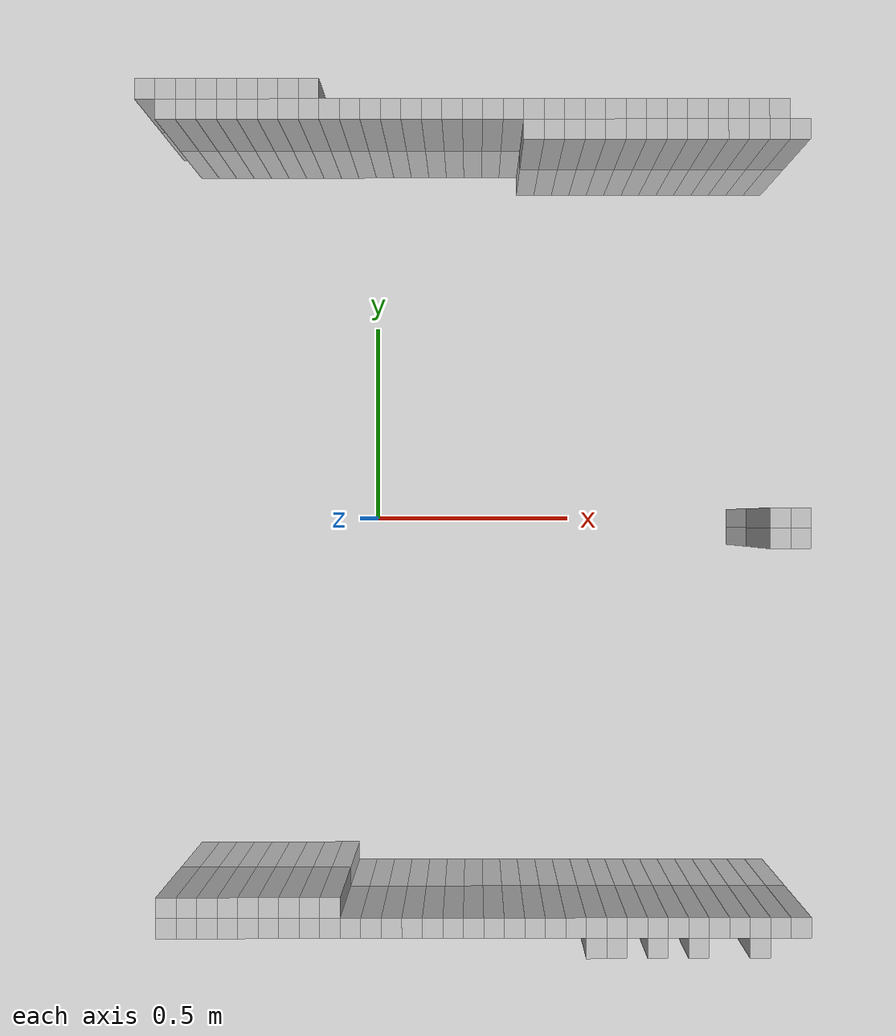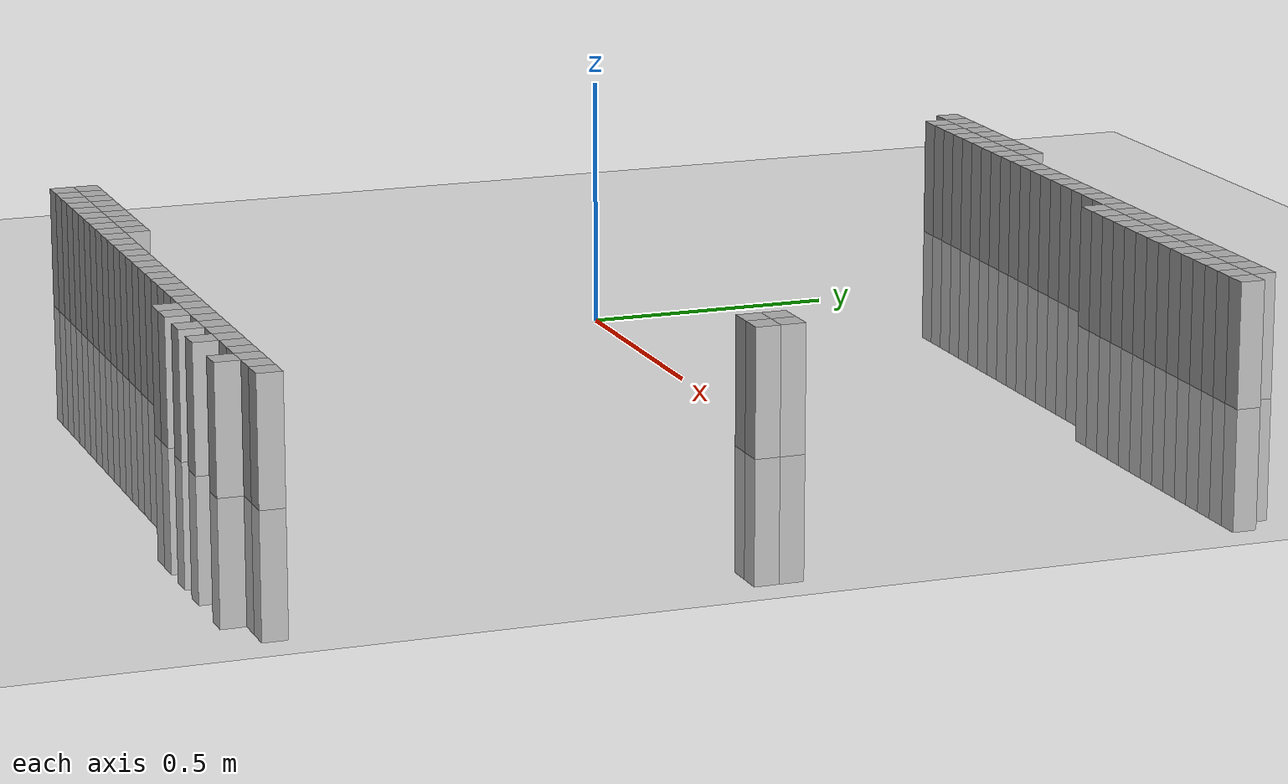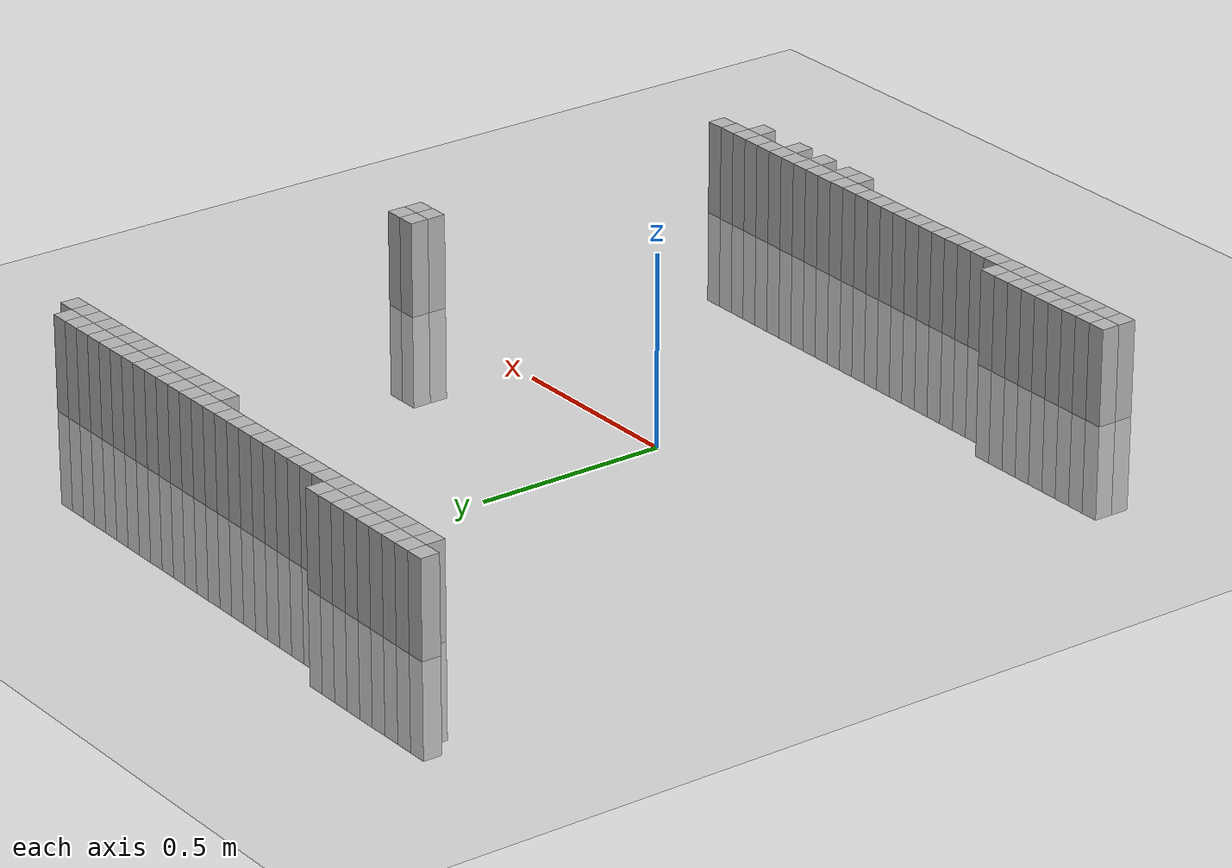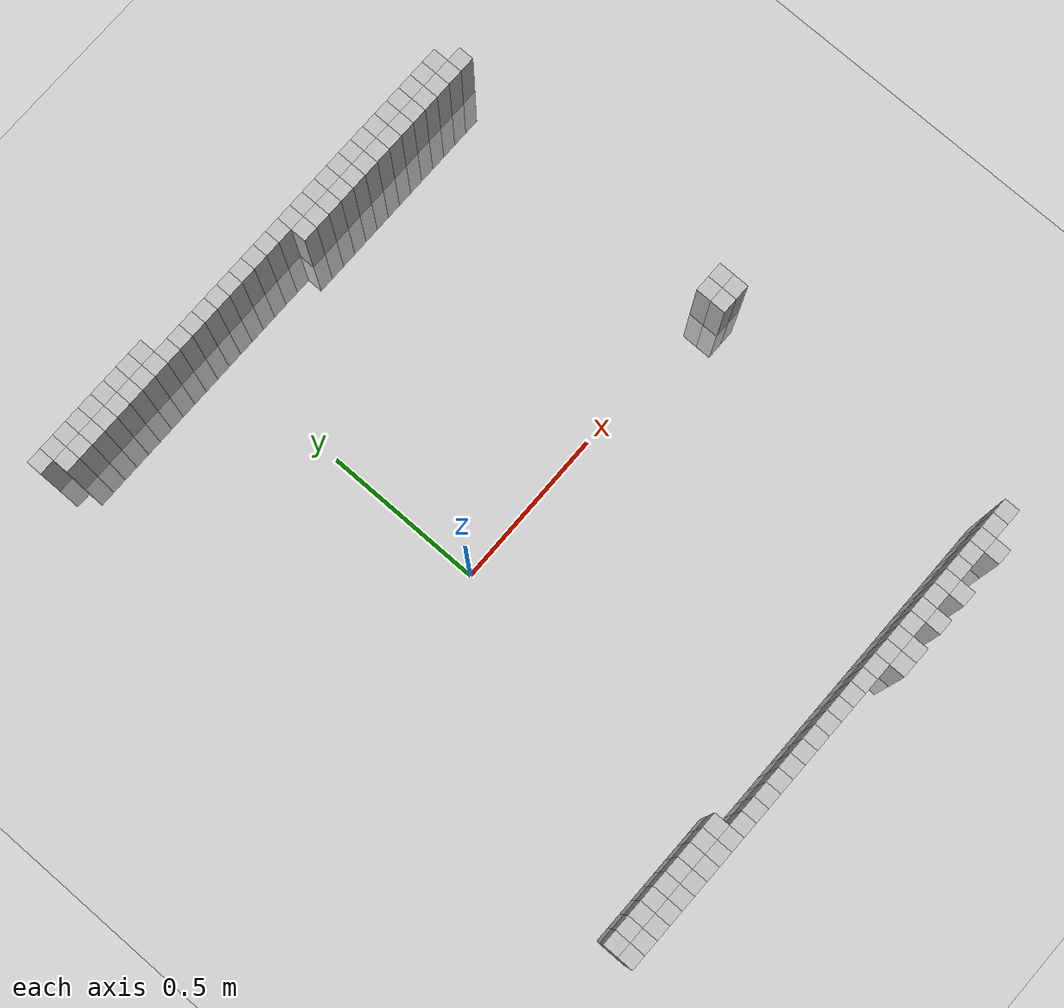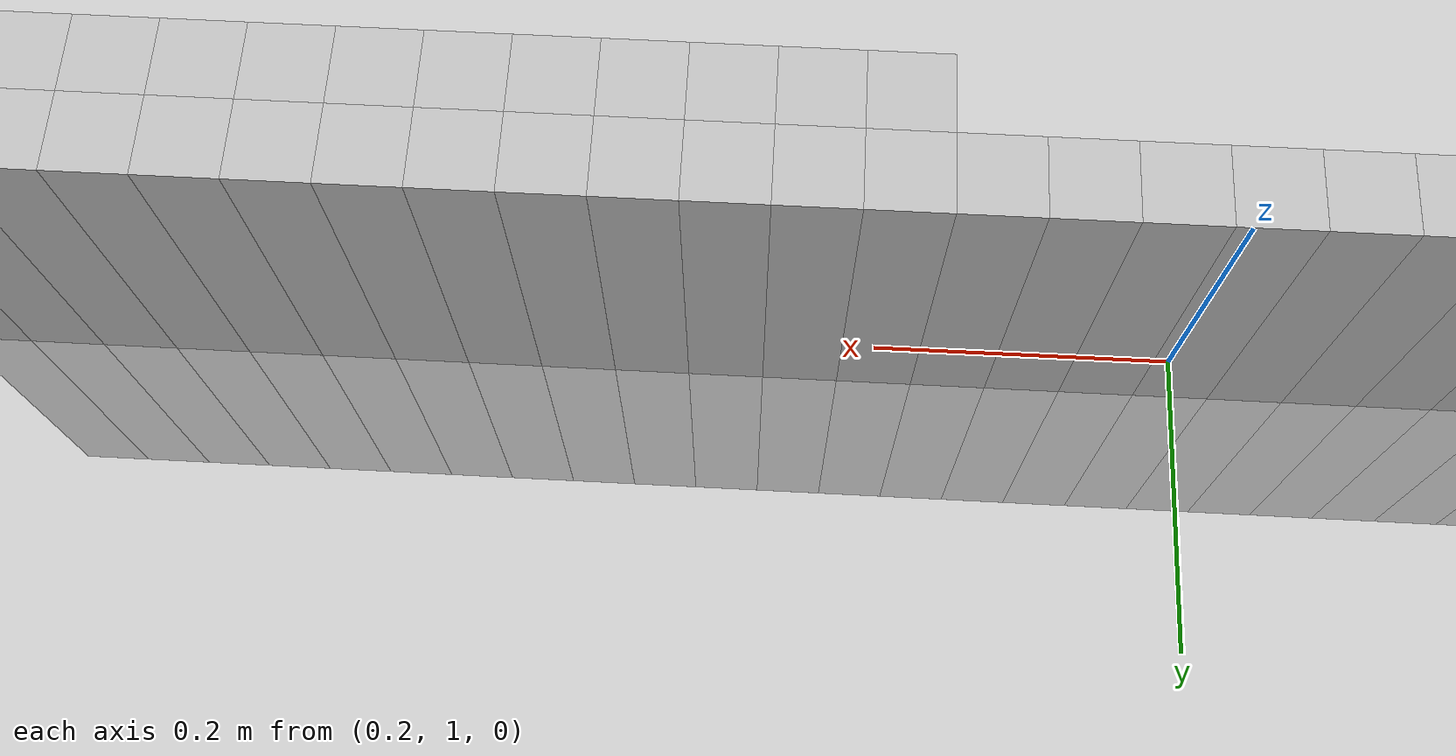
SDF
<sdf version="1.6">
 <world name="my_exploration_world">
  <include><uri>model://ground_plane</uri></include>
  <include><uri>model://sun</uri></include>
  <model name="obstacle_0">
   <pose>0.5500001572072506 -1.0499998666346073 0 0 0 0</pose>
   <link name="link">
    <collision name="collision">
     <geometry><box><size>0.05000000074505806 0.05000000074505806 0.5</size></box></geometry>
    </collision>
    <visual name="visual">
     <geometry><box><size>0.05000000074505806 0.05000000074505806 0.5</size></box></geometry>
    </visual>
   </link>
   <static>true</static>
  </model>
  <model name="obstacle_1">
   <pose>0.6000001579523087 -1.0499998666346073 0 0 0 0</pose>
   <link name="link">
    <collision name="collision">
     <geometry><box><size>0.05000000074505806 0.05000000074505806 0.5</size></box></geometry>
    </collision>
    <visual name="visual">
     <geometry><box><size>0.05000000074505806 0.05000000074505806 0.5</size></box></geometry>
    </visual>
   </link>
   <static>true</static>
  </model>
  <model name="obstacle_2">
   <pose>0.7000001594424248 -1.0499998666346073 0 0 0 0</pose>
   <link name="link">
    <collision name="collision">
     <geometry><box><size>0.05000000074505806 0.05000000074505806 0.5</size></box></geometry>
    </collision>
    <visual name="visual">
     <geometry><box><size>0.05000000074505806 0.05000000074505806 0.5</size></box></geometry>
    </visual>
   </link>
   <static>true</static>
  </model>
  <model name="obstacle_3">
   <pose>0.8000001609325409 -1.0499998666346073 0 0 0 0</pose>
   <link name="link">
    <collision name="collision">
     <geometry><box><size>0.05000000074505806 0.05000000074505806 0.5</size></box></geometry>
    </collision>
    <visual name="visual">
     <geometry><box><size>0.05000000074505806 0.05000000074505806 0.5</size></box></geometry>
    </visual>
   </link>
   <static>true</static>
  </model>
  <model name="obstacle_4">
   <pose>0.9500001631677151 -1.0499998666346073 0 0 0 0</pose>
   <link name="link">
    <collision name="collision">
     <geometry><box><size>0.05000000074505806 0.05000000074505806 0.5</size></box></geometry>
    </collision>
    <visual name="visual">
     <geometry><box><size>0.05000000074505806 0.05000000074505806 0.5</size></box></geometry>
    </visual>
   </link>
   <static>true</static>
  </model>
  <model name="obstacle_15">
   <pose>-0.49999985843896866 -0.9999998658895493 0 0 0 0</pose>
   <link name="link">
    <collision name="collision">
     <geometry><box><size>0.05000000074505806 0.05000000074505806 0.5</size></box></geometry>
    </collision>
    <visual name="visual">
     <geometry><box><size>0.05000000074505806 0.05000000074505806 0.5</size></box></geometry>
    </visual>
   </link>
   <static>true</static>
  </model>
  <model name="obstacle_16">
   <pose>-0.4499998576939106 -0.9999998658895493 0 0 0 0</pose>
   <link name="link">
    <collision name="collision">
     <geometry><box><size>0.05000000074505806 0.05000000074505806 0.5</size></box></geometry>
    </collision>
    <visual name="visual">
     <geometry><box><size>0.05000000074505806 0.05000000074505806 0.5</size></box></geometry>
    </visual>
   </link>
   <static>true</static>
  </model>
  <model name="obstacle_17">
   <pose>-0.39999985694885254 -0.9999998658895493 0 0 0 0</pose>
   <link name="link">
    <collision name="collision">
     <geometry><box><size>0.05000000074505806 0.05000000074505806 0.5</size></box></geometry>
    </collision>
    <visual name="visual">
     <geometry><box><size>0.05000000074505806 0.05000000074505806 0.5</size></box></geometry>
    </visual>
   </link>
   <static>true</static>
  </model>
  <model name="obstacle_18">
   <pose>-0.3499998562037945 -0.9999998658895493 0 0 0 0</pose>
   <link name="link">
    <collision name="collision">
     <geometry><box><size>0.05000000074505806 0.05000000074505806 0.5</size></box></geometry>
    </collision>
    <visual name="visual">
     <geometry><box><size>0.05000000074505806 0.05000000074505806 0.5</size></box></geometry>
    </visual>
   </link>
   <static>true</static>
  </model>
  <model name="obstacle_19">
   <pose>-0.2999998554587364 -0.9999998658895493 0 0 0 0</pose>
   <link name="link">
    <collision name="collision">
     <geometry><box><size>0.05000000074505806 0.05000000074505806 0.5</size></box></geometry>
    </collision>
    <visual name="visual">
     <geometry><box><size>0.05000000074505806 0.05000000074505806 0.5</size></box></geometry>
    </visual>
   </link>
   <static>true</static>
  </model>
  <model name="obstacle_20">
   <pose>-0.24999985471367836 -0.9999998658895493 0 0 0 0</pose>
   <link name="link">
    <collision name="collision">
     <geometry><box><size>0.05000000074505806 0.05000000074505806 0.5</size></box></geometry>
    </collision>
    <visual name="visual">
     <geometry><box><size>0.05000000074505806 0.05000000074505806 0.5</size></box></geometry>
    </visual>
   </link>
   <static>true</static>
  </model>
  <model name="obstacle_21">
   <pose>-0.1999998539686203 -0.9999998658895493 0 0 0 0</pose>
   <link name="link">
    <collision name="collision">
     <geometry><box><size>0.05000000074505806 0.05000000074505806 0.5</size></box></geometry>
    </collision>
    <visual name="visual">
     <geometry><box><size>0.05000000074505806 0.05000000074505806 0.5</size></box></geometry>
    </visual>
   </link>
   <static>true</static>
  </model>
  <model name="obstacle_22">
   <pose>-0.14999985322356224 -0.9999998658895493 0 0 0 0</pose>
   <link name="link">
    <collision name="collision">
     <geometry><box><size>0.05000000074505806 0.05000000074505806 0.5</size></box></geometry>
    </collision>
    <visual name="visual">
     <geometry><box><size>0.05000000074505806 0.05000000074505806 0.5</size></box></geometry>
    </visual>
   </link>
   <static>true</static>
  </model>
  <model name="obstacle_23">
   <pose>-0.09999985247850418 -0.9999998658895493 0 0 0 0</pose>
   <link name="link">
    <collision name="collision">
     <geometry><box><size>0.05000000074505806 0.05000000074505806 0.5</size></box></geometry>
    </collision>
    <visual name="visual">
     <geometry><box><size>0.05000000074505806 0.05000000074505806 0.5</size></box></geometry>
    </visual>
   </link>
   <static>true</static>
  </model>
  <model name="obstacle_24">
   <pose>-0.04999985173344612 -0.9999998658895493 0 0 0 0</pose>
   <link name="link">
    <collision name="collision">
     <geometry><box><size>0.05000000074505806 0.05000000074505806 0.5</size></box></geometry>
    </collision>
    <visual name="visual">
     <geometry><box><size>0.05000000074505806 0.05000000074505806 0.5</size></box></geometry>
    </visual>
   </link>
   <static>true</static>
  </model>
  <model name="obstacle_25">
   <pose>1.4901161193847656e-07 -0.9999998658895493 0 0 0 0</pose>
   <link name="link">
    <collision name="collision">
     <geometry><box><size>0.05000000074505806 0.05000000074505806 0.5</size></box></geometry>
    </collision>
    <visual name="visual">
     <geometry><box><size>0.05000000074505806 0.05000000074505806 0.5</size></box></geometry>
    </visual>
   </link>
   <static>true</static>
  </model>
  <model name="obstacle_26">
   <pose>0.05000014975667 -0.9999998658895493 0 0 0 0</pose>
   <link name="link">
    <collision name="collision">
     <geometry><box><size>0.05000000074505806 0.05000000074505806 0.5</size></box></geometry>
    </collision>
    <visual name="visual">
     <geometry><box><size>0.05000000074505806 0.05000000074505806 0.5</size></box></geometry>
    </visual>
   </link>
   <static>true</static>
  </model>
  <model name="obstacle_27">
   <pose>0.10000015050172806 -0.9999998658895493 0 0 0 0</pose>
   <link name="link">
    <collision name="collision">
     <geometry><box><size>0.05000000074505806 0.05000000074505806 0.5</size></box></geometry>
    </collision>
    <visual name="visual">
     <geometry><box><size>0.05000000074505806 0.05000000074505806 0.5</size></box></geometry>
    </visual>
   </link>
   <static>true</static>
  </model>
  <model name="obstacle_28">
   <pose>0.15000015124678612 -0.9999998658895493 0 0 0 0</pose>
   <link name="link">
    <collision name="collision">
     <geometry><box><size>0.05000000074505806 0.05000000074505806 0.5</size></box></geometry>
    </collision>
    <visual name="visual">
     <geometry><box><size>0.05000000074505806 0.05000000074505806 0.5</size></box></geometry>
    </visual>
   </link>
   <static>true</static>
  </model>
  <model name="obstacle_29">
   <pose>0.20000015199184418 -0.9999998658895493 0 0 0 0</pose>
   <link name="link">
    <collision name="collision">
     <geometry><box><size>0.05000000074505806 0.05000000074505806 0.5</size></box></geometry>
    </collision>
    <visual name="visual">
     <geometry><box><size>0.05000000074505806 0.05000000074505806 0.5</size></box></geometry>
    </visual>
   </link>
   <static>true</static>
  </model>
  <model name="obstacle_30">
   <pose>0.25000015273690224 -0.9999998658895493 0 0 0 0</pose>
   <link name="link">
    <collision name="collision">
     <geometry><box><size>0.05000000074505806 0.05000000074505806 0.5</size></box></geometry>
    </collision>
    <visual name="visual">
     <geometry><box><size>0.05000000074505806 0.05000000074505806 0.5</size></box></geometry>
    </visual>
   </link>
   <static>true</static>
  </model>
  <model name="obstacle_31">
   <pose>0.3000001534819603 -0.9999998658895493 0 0 0 0</pose>
   <link name="link">
    <collision name="collision">
     <geometry><box><size>0.05000000074505806 0.05000000074505806 0.5</size></box></geometry>
    </collision>
    <visual name="visual">
     <geometry><box><size>0.05000000074505806 0.05000000074505806 0.5</size></box></geometry>
    </visual>
   </link>
   <static>true</static>
  </model>
  <model name="obstacle_32">
   <pose>0.35000015422701836 -0.9999998658895493 0 0 0 0</pose>
   <link name="link">
    <collision name="collision">
     <geometry><box><size>0.05000000074505806 0.05000000074505806 0.5</size></box></geometry>
    </collision>
    <visual name="visual">
     <geometry><box><size>0.05000000074505806 0.05000000074505806 0.5</size></box></geometry>
    </visual>
   </link>
   <static>true</static>
  </model>
  <model name="obstacle_33">
   <pose>0.4000001549720764 -0.9999998658895493 0 0 0 0</pose>
   <link name="link">
    <collision name="collision">
     <geometry><box><size>0.05000000074505806 0.05000000074505806 0.5</size></box></geometry>
    </collision>
    <visual name="visual">
     <geometry><box><size>0.05000000074505806 0.05000000074505806 0.5</size></box></geometry>
    </visual>
   </link>
   <static>true</static>
  </model>
  <model name="obstacle_34">
   <pose>0.4500001557171345 -0.9999998658895493 0 0 0 0</pose>
   <link name="link">
    <collision name="collision">
     <geometry><box><size>0.05000000074505806 0.05000000074505806 0.5</size></box></geometry>
    </collision>
    <visual name="visual">
     <geometry><box><size>0.05000000074505806 0.05000000074505806 0.5</size></box></geometry>
    </visual>
   </link>
   <static>true</static>
  </model>
  <model name="obstacle_35">
   <pose>0.5000001564621925 -0.9999998658895493 0 0 0 0</pose>
   <link name="link">
    <collision name="collision">
     <geometry><box><size>0.05000000074505806 0.05000000074505806 0.5</size></box></geometry>
    </collision>
    <visual name="visual">
     <geometry><box><size>0.05000000074505806 0.05000000074505806 0.5</size></box></geometry>
    </visual>
   </link>
   <static>true</static>
  </model>
  <model name="obstacle_36">
   <pose>0.5500001572072506 -0.9999998658895493 0 0 0 0</pose>
   <link name="link">
    <collision name="collision">
     <geometry><box><size>0.05000000074505806 0.05000000074505806 0.5</size></box></geometry>
    </collision>
    <visual name="visual">
     <geometry><box><size>0.05000000074505806 0.05000000074505806 0.5</size></box></geometry>
    </visual>
   </link>
   <static>true</static>
  </model>
  <model name="obstacle_37">
   <pose>0.6000001579523087 -0.9999998658895493 0 0 0 0</pose>
   <link name="link">
    <collision name="collision">
     <geometry><box><size>0.05000000074505806 0.05000000074505806 0.5</size></box></geometry>
    </collision>
    <visual name="visual">
     <geometry><box><size>0.05000000074505806 0.05000000074505806 0.5</size></box></geometry>
    </visual>
   </link>
   <static>true</static>
  </model>
  <model name="obstacle_38">
   <pose>0.6500001586973667 -0.9999998658895493 0 0 0 0</pose>
   <link name="link">
    <collision name="collision">
     <geometry><box><size>0.05000000074505806 0.05000000074505806 0.5</size></box></geometry>
    </collision>
    <visual name="visual">
     <geometry><box><size>0.05000000074505806 0.05000000074505806 0.5</size></box></geometry>
    </visual>
   </link>
   <static>true</static>
  </model>
  <model name="obstacle_39">
   <pose>0.7000001594424248 -0.9999998658895493 0 0 0 0</pose>
   <link name="link">
    <collision name="collision">
     <geometry><box><size>0.05000000074505806 0.05000000074505806 0.5</size></box></geometry>
    </collision>
    <visual name="visual">
     <geometry><box><size>0.05000000074505806 0.05000000074505806 0.5</size></box></geometry>
    </visual>
   </link>
   <static>true</static>
  </model>
  <model name="obstacle_40">
   <pose>0.7500001601874828 -0.9999998658895493 0 0 0 0</pose>
   <link name="link">
    <collision name="collision">
     <geometry><box><size>0.05000000074505806 0.05000000074505806 0.5</size></box></geometry>
    </collision>
    <visual name="visual">
     <geometry><box><size>0.05000000074505806 0.05000000074505806 0.5</size></box></geometry>
    </visual>
   </link>
   <static>true</static>
  </model>
  <model name="obstacle_41">
   <pose>0.8000001609325409 -0.9999998658895493 0 0 0 0</pose>
   <link name="link">
    <collision name="collision">
     <geometry><box><size>0.05000000074505806 0.05000000074505806 0.5</size></box></geometry>
    </collision>
    <visual name="visual">
     <geometry><box><size>0.05000000074505806 0.05000000074505806 0.5</size></box></geometry>
    </visual>
   </link>
   <static>true</static>
  </model>
  <model name="obstacle_42">
   <pose>0.850000161677599 -0.9999998658895493 0 0 0 0</pose>
   <link name="link">
    <collision name="collision">
     <geometry><box><size>0.05000000074505806 0.05000000074505806 0.5</size></box></geometry>
    </collision>
    <visual name="visual">
     <geometry><box><size>0.05000000074505806 0.05000000074505806 0.5</size></box></geometry>
    </visual>
   </link>
   <static>true</static>
  </model>
  <model name="obstacle_43">
   <pose>0.900000162422657 -0.9999998658895493 0 0 0 0</pose>
   <link name="link">
    <collision name="collision">
     <geometry><box><size>0.05000000074505806 0.05000000074505806 0.5</size></box></geometry>
    </collision>
    <visual name="visual">
     <geometry><box><size>0.05000000074505806 0.05000000074505806 0.5</size></box></geometry>
    </visual>
   </link>
   <static>true</static>
  </model>
  <model name="obstacle_44">
   <pose>0.9500001631677151 -0.9999998658895493 0 0 0 0</pose>
   <link name="link">
    <collision name="collision">
     <geometry><box><size>0.05000000074505806 0.05000000074505806 0.5</size></box></geometry>
    </collision>
    <visual name="visual">
     <geometry><box><size>0.05000000074505806 0.05000000074505806 0.5</size></box></geometry>
    </visual>
   </link>
   <static>true</static>
  </model>
  <model name="obstacle_45">
   <pose>1.0000001639127731 -0.9999998658895493 0 0 0 0</pose>
   <link name="link">
    <collision name="collision">
     <geometry><box><size>0.05000000074505806 0.05000000074505806 0.5</size></box></geometry>
    </collision>
    <visual name="visual">
     <geometry><box><size>0.05000000074505806 0.05000000074505806 0.5</size></box></geometry>
    </visual>
   </link>
   <static>true</static>
  </model>
  <model name="obstacle_46">
   <pose>1.0500001646578312 -0.9999998658895493 0 0 0 0</pose>
   <link name="link">
    <collision name="collision">
     <geometry><box><size>0.05000000074505806 0.05000000074505806 0.5</size></box></geometry>
    </collision>
    <visual name="visual">
     <geometry><box><size>0.05000000074505806 0.05000000074505806 0.5</size></box></geometry>
    </visual>
   </link>
   <static>true</static>
  </model>
  <model name="obstacle_94">
   <pose>-0.49999985843896866 -0.9499998651444912 0 0 0 0</pose>
   <link name="link">
    <collision name="collision">
     <geometry><box><size>0.05000000074505806 0.05000000074505806 0.5</size></box></geometry>
    </collision>
    <visual name="visual">
     <geometry><box><size>0.05000000074505806 0.05000000074505806 0.5</size></box></geometry>
    </visual>
   </link>
   <static>true</static>
  </model>
  <model name="obstacle_95">
   <pose>-0.4499998576939106 -0.9499998651444912 0 0 0 0</pose>
   <link name="link">
    <collision name="collision">
     <geometry><box><size>0.05000000074505806 0.05000000074505806 0.5</size></box></geometry>
    </collision>
    <visual name="visual">
     <geometry><box><size>0.05000000074505806 0.05000000074505806 0.5</size></box></geometry>
    </visual>
   </link>
   <static>true</static>
  </model>
  <model name="obstacle_96">
   <pose>-0.39999985694885254 -0.9499998651444912 0 0 0 0</pose>
   <link name="link">
    <collision name="collision">
     <geometry><box><size>0.05000000074505806 0.05000000074505806 0.5</size></box></geometry>
    </collision>
    <visual name="visual">
     <geometry><box><size>0.05000000074505806 0.05000000074505806 0.5</size></box></geometry>
    </visual>
   </link>
   <static>true</static>
  </model>
  <model name="obstacle_97">
   <pose>-0.3499998562037945 -0.9499998651444912 0 0 0 0</pose>
   <link name="link">
    <collision name="collision">
     <geometry><box><size>0.05000000074505806 0.05000000074505806 0.5</size></box></geometry>
    </collision>
    <visual name="visual">
     <geometry><box><size>0.05000000074505806 0.05000000074505806 0.5</size></box></geometry>
    </visual>
   </link>
   <static>true</static>
  </model>
  <model name="obstacle_98">
   <pose>-0.2999998554587364 -0.9499998651444912 0 0 0 0</pose>
   <link name="link">
    <collision name="collision">
     <geometry><box><size>0.05000000074505806 0.05000000074505806 0.5</size></box></geometry>
    </collision>
    <visual name="visual">
     <geometry><box><size>0.05000000074505806 0.05000000074505806 0.5</size></box></geometry>
    </visual>
   </link>
   <static>true</static>
  </model>
  <model name="obstacle_99">
   <pose>-0.24999985471367836 -0.9499998651444912 0 0 0 0</pose>
   <link name="link">
    <collision name="collision">
     <geometry><box><size>0.05000000074505806 0.05000000074505806 0.5</size></box></geometry>
    </collision>
    <visual name="visual">
     <geometry><box><size>0.05000000074505806 0.05000000074505806 0.5</size></box></geometry>
    </visual>
   </link>
   <static>true</static>
  </model>
  <model name="obstacle_100">
   <pose>-0.1999998539686203 -0.9499998651444912 0 0 0 0</pose>
   <link name="link">
    <collision name="collision">
     <geometry><box><size>0.05000000074505806 0.05000000074505806 0.5</size></box></geometry>
    </collision>
    <visual name="visual">
     <geometry><box><size>0.05000000074505806 0.05000000074505806 0.5</size></box></geometry>
    </visual>
   </link>
   <static>true</static>
  </model>
  <model name="obstacle_101">
   <pose>-0.14999985322356224 -0.9499998651444912 0 0 0 0</pose>
   <link name="link">
    <collision name="collision">
     <geometry><box><size>0.05000000074505806 0.05000000074505806 0.5</size></box></geometry>
    </collision>
    <visual name="visual">
     <geometry><box><size>0.05000000074505806 0.05000000074505806 0.5</size></box></geometry>
    </visual>
   </link>
   <static>true</static>
  </model>
  <model name="obstacle_102">
   <pose>-0.09999985247850418 -0.9499998651444912 0 0 0 0</pose>
   <link name="link">
    <collision name="collision">
     <geometry><box><size>0.05000000074505806 0.05000000074505806 0.5</size></box></geometry>
    </collision>
    <visual name="visual">
     <geometry><box><size>0.05000000074505806 0.05000000074505806 0.5</size></box></geometry>
    </visual>
   </link>
   <static>true</static>
  </model>
  <model name="obstacle_132">
   <pose>1.0000001639127731 -0.04999985173344612 0 0 0 0</pose>
   <link name="link">
    <collision name="collision">
     <geometry><box><size>0.05000000074505806 0.05000000074505806 0.5</size></box></geometry>
    </collision>
    <visual name="visual">
     <geometry><box><size>0.05000000074505806 0.05000000074505806 0.5</size></box></geometry>
    </visual>
   </link>
   <static>true</static>
  </model>
  <model name="obstacle_133">
   <pose>1.0500001646578312 -0.04999985173344612 0 0 0 0</pose>
   <link name="link">
    <collision name="collision">
     <geometry><box><size>0.05000000074505806 0.05000000074505806 0.5</size></box></geometry>
    </collision>
    <visual name="visual">
     <geometry><box><size>0.05000000074505806 0.05000000074505806 0.5</size></box></geometry>
    </visual>
   </link>
   <static>true</static>
  </model>
  <model name="obstacle_154">
   <pose>1.0000001639127731 1.4901161193847656e-07 0 0 0 0</pose>
   <link name="link">
    <collision name="collision">
     <geometry><box><size>0.05000000074505806 0.05000000074505806 0.5</size></box></geometry>
    </collision>
    <visual name="visual">
     <geometry><box><size>0.05000000074505806 0.05000000074505806 0.5</size></box></geometry>
    </visual>
   </link>
   <static>true</static>
  </model>
  <model name="obstacle_155">
   <pose>1.0500001646578312 1.4901161193847656e-07 0 0 0 0</pose>
   <link name="link">
    <collision name="collision">
     <geometry><box><size>0.05000000074505806 0.05000000074505806 0.5</size></box></geometry>
    </collision>
    <visual name="visual">
     <geometry><box><size>0.05000000074505806 0.05000000074505806 0.5</size></box></geometry>
    </visual>
   </link>
   <static>true</static>
  </model>
  <model name="obstacle_231">
   <pose>0.4000001549720764 0.9500001631677151 0 0 0 0</pose>
   <link name="link">
    <collision name="collision">
     <geometry><box><size>0.05000000074505806 0.05000000074505806 0.5</size></box></geometry>
    </collision>
    <visual name="visual">
     <geometry><box><size>0.05000000074505806 0.05000000074505806 0.5</size></box></geometry>
    </visual>
   </link>
   <static>true</static>
  </model>
  <model name="obstacle_232">
   <pose>0.4500001557171345 0.9500001631677151 0 0 0 0</pose>
   <link name="link">
    <collision name="collision">
     <geometry><box><size>0.05000000074505806 0.05000000074505806 0.5</size></box></geometry>
    </collision>
    <visual name="visual">
     <geometry><box><size>0.05000000074505806 0.05000000074505806 0.5</size></box></geometry>
    </visual>
   </link>
   <static>true</static>
  </model>
  <model name="obstacle_233">
   <pose>0.5000001564621925 0.9500001631677151 0 0 0 0</pose>
   <link name="link">
    <collision name="collision">
     <geometry><box><size>0.05000000074505806 0.05000000074505806 0.5</size></box></geometry>
    </collision>
    <visual name="visual">
     <geometry><box><size>0.05000000074505806 0.05000000074505806 0.5</size></box></geometry>
    </visual>
   </link>
   <static>true</static>
  </model>
  <model name="obstacle_234">
   <pose>0.5500001572072506 0.9500001631677151 0 0 0 0</pose>
   <link name="link">
    <collision name="collision">
     <geometry><box><size>0.05000000074505806 0.05000000074505806 0.5</size></box></geometry>
    </collision>
    <visual name="visual">
     <geometry><box><size>0.05000000074505806 0.05000000074505806 0.5</size></box></geometry>
    </visual>
   </link>
   <static>true</static>
  </model>
  <model name="obstacle_235">
   <pose>0.6000001579523087 0.9500001631677151 0 0 0 0</pose>
   <link name="link">
    <collision name="collision">
     <geometry><box><size>0.05000000074505806 0.05000000074505806 0.5</size></box></geometry>
    </collision>
    <visual name="visual">
     <geometry><box><size>0.05000000074505806 0.05000000074505806 0.5</size></box></geometry>
    </visual>
   </link>
   <static>true</static>
  </model>
  <model name="obstacle_236">
   <pose>0.6500001586973667 0.9500001631677151 0 0 0 0</pose>
   <link name="link">
    <collision name="collision">
     <geometry><box><size>0.05000000074505806 0.05000000074505806 0.5</size></box></geometry>
    </collision>
    <visual name="visual">
     <geometry><box><size>0.05000000074505806 0.05000000074505806 0.5</size></box></geometry>
    </visual>
   </link>
   <static>true</static>
  </model>
  <model name="obstacle_237">
   <pose>0.7000001594424248 0.9500001631677151 0 0 0 0</pose>
   <link name="link">
    <collision name="collision">
     <geometry><box><size>0.05000000074505806 0.05000000074505806 0.5</size></box></geometry>
    </collision>
    <visual name="visual">
     <geometry><box><size>0.05000000074505806 0.05000000074505806 0.5</size></box></geometry>
    </visual>
   </link>
   <static>true</static>
  </model>
  <model name="obstacle_238">
   <pose>0.7500001601874828 0.9500001631677151 0 0 0 0</pose>
   <link name="link">
    <collision name="collision">
     <geometry><box><size>0.05000000074505806 0.05000000074505806 0.5</size></box></geometry>
    </collision>
    <visual name="visual">
     <geometry><box><size>0.05000000074505806 0.05000000074505806 0.5</size></box></geometry>
    </visual>
   </link>
   <static>true</static>
  </model>
  <model name="obstacle_239">
   <pose>0.8000001609325409 0.9500001631677151 0 0 0 0</pose>
   <link name="link">
    <collision name="collision">
     <geometry><box><size>0.05000000074505806 0.05000000074505806 0.5</size></box></geometry>
    </collision>
    <visual name="visual">
     <geometry><box><size>0.05000000074505806 0.05000000074505806 0.5</size></box></geometry>
    </visual>
   </link>
   <static>true</static>
  </model>
  <model name="obstacle_240">
   <pose>0.850000161677599 0.9500001631677151 0 0 0 0</pose>
   <link name="link">
    <collision name="collision">
     <geometry><box><size>0.05000000074505806 0.05000000074505806 0.5</size></box></geometry>
    </collision>
    <visual name="visual">
     <geometry><box><size>0.05000000074505806 0.05000000074505806 0.5</size></box></geometry>
    </visual>
   </link>
   <static>true</static>
  </model>
  <model name="obstacle_241">
   <pose>0.900000162422657 0.9500001631677151 0 0 0 0</pose>
   <link name="link">
    <collision name="collision">
     <geometry><box><size>0.05000000074505806 0.05000000074505806 0.5</size></box></geometry>
    </collision>
    <visual name="visual">
     <geometry><box><size>0.05000000074505806 0.05000000074505806 0.5</size></box></geometry>
    </visual>
   </link>
   <static>true</static>
  </model>
  <model name="obstacle_242">
   <pose>0.9500001631677151 0.9500001631677151 0 0 0 0</pose>
   <link name="link">
    <collision name="collision">
     <geometry><box><size>0.05000000074505806 0.05000000074505806 0.5</size></box></geometry>
    </collision>
    <visual name="visual">
     <geometry><box><size>0.05000000074505806 0.05000000074505806 0.5</size></box></geometry>
    </visual>
   </link>
   <static>true</static>
  </model>
  <model name="obstacle_243">
   <pose>1.0000001639127731 0.9500001631677151 0 0 0 0</pose>
   <link name="link">
    <collision name="collision">
     <geometry><box><size>0.05000000074505806 0.05000000074505806 0.5</size></box></geometry>
    </collision>
    <visual name="visual">
     <geometry><box><size>0.05000000074505806 0.05000000074505806 0.5</size></box></geometry>
    </visual>
   </link>
   <static>true</static>
  </model>
  <model name="obstacle_244">
   <pose>1.0500001646578312 0.9500001631677151 0 0 0 0</pose>
   <link name="link">
    <collision name="collision">
     <geometry><box><size>0.05000000074505806 0.05000000074505806 0.5</size></box></geometry>
    </collision>
    <visual name="visual">
     <geometry><box><size>0.05000000074505806 0.05000000074505806 0.5</size></box></geometry>
    </visual>
   </link>
   <static>true</static>
  </model>
  <model name="obstacle_259">
   <pose>-0.49999985843896866 1.0000001639127731 0 0 0 0</pose>
   <link name="link">
    <collision name="collision">
     <geometry><box><size>0.05000000074505806 0.05000000074505806 0.5</size></box></geometry>
    </collision>
    <visual name="visual">
     <geometry><box><size>0.05000000074505806 0.05000000074505806 0.5</size></box></geometry>
    </visual>
   </link>
   <static>true</static>
  </model>
  <model name="obstacle_260">
   <pose>-0.4499998576939106 1.0000001639127731 0 0 0 0</pose>
   <link name="link">
    <collision name="collision">
     <geometry><box><size>0.05000000074505806 0.05000000074505806 0.5</size></box></geometry>
    </collision>
    <visual name="visual">
     <geometry><box><size>0.05000000074505806 0.05000000074505806 0.5</size></box></geometry>
    </visual>
   </link>
   <static>true</static>
  </model>
  <model name="obstacle_261">
   <pose>-0.39999985694885254 1.0000001639127731 0 0 0 0</pose>
   <link name="link">
    <collision name="collision">
     <geometry><box><size>0.05000000074505806 0.05000000074505806 0.5</size></box></geometry>
    </collision>
    <visual name="visual">
     <geometry><box><size>0.05000000074505806 0.05000000074505806 0.5</size></box></geometry>
    </visual>
   </link>
   <static>true</static>
  </model>
  <model name="obstacle_262">
   <pose>-0.3499998562037945 1.0000001639127731 0 0 0 0</pose>
   <link name="link">
    <collision name="collision">
     <geometry><box><size>0.05000000074505806 0.05000000074505806 0.5</size></box></geometry>
    </collision>
    <visual name="visual">
     <geometry><box><size>0.05000000074505806 0.05000000074505806 0.5</size></box></geometry>
    </visual>
   </link>
   <static>true</static>
  </model>
  <model name="obstacle_263">
   <pose>-0.2999998554587364 1.0000001639127731 0 0 0 0</pose>
   <link name="link">
    <collision name="collision">
     <geometry><box><size>0.05000000074505806 0.05000000074505806 0.5</size></box></geometry>
    </collision>
    <visual name="visual">
     <geometry><box><size>0.05000000074505806 0.05000000074505806 0.5</size></box></geometry>
    </visual>
   </link>
   <static>true</static>
  </model>
  <model name="obstacle_264">
   <pose>-0.24999985471367836 1.0000001639127731 0 0 0 0</pose>
   <link name="link">
    <collision name="collision">
     <geometry><box><size>0.05000000074505806 0.05000000074505806 0.5</size></box></geometry>
    </collision>
    <visual name="visual">
     <geometry><box><size>0.05000000074505806 0.05000000074505806 0.5</size></box></geometry>
    </visual>
   </link>
   <static>true</static>
  </model>
  <model name="obstacle_265">
   <pose>-0.1999998539686203 1.0000001639127731 0 0 0 0</pose>
   <link name="link">
    <collision name="collision">
     <geometry><box><size>0.05000000074505806 0.05000000074505806 0.5</size></box></geometry>
    </collision>
    <visual name="visual">
     <geometry><box><size>0.05000000074505806 0.05000000074505806 0.5</size></box></geometry>
    </visual>
   </link>
   <static>true</static>
  </model>
  <model name="obstacle_266">
   <pose>-0.14999985322356224 1.0000001639127731 0 0 0 0</pose>
   <link name="link">
    <collision name="collision">
     <geometry><box><size>0.05000000074505806 0.05000000074505806 0.5</size></box></geometry>
    </collision>
    <visual name="visual">
     <geometry><box><size>0.05000000074505806 0.05000000074505806 0.5</size></box></geometry>
    </visual>
   </link>
   <static>true</static>
  </model>
  <model name="obstacle_267">
   <pose>-0.09999985247850418 1.0000001639127731 0 0 0 0</pose>
   <link name="link">
    <collision name="collision">
     <geometry><box><size>0.05000000074505806 0.05000000074505806 0.5</size></box></geometry>
    </collision>
    <visual name="visual">
     <geometry><box><size>0.05000000074505806 0.05000000074505806 0.5</size></box></geometry>
    </visual>
   </link>
   <static>true</static>
  </model>
  <model name="obstacle_268">
   <pose>-0.04999985173344612 1.0000001639127731 0 0 0 0</pose>
   <link name="link">
    <collision name="collision">
     <geometry><box><size>0.05000000074505806 0.05000000074505806 0.5</size></box></geometry>
    </collision>
    <visual name="visual">
     <geometry><box><size>0.05000000074505806 0.05000000074505806 0.5</size></box></geometry>
    </visual>
   </link>
   <static>true</static>
  </model>
  <model name="obstacle_269">
   <pose>1.4901161193847656e-07 1.0000001639127731 0 0 0 0</pose>
   <link name="link">
    <collision name="collision">
     <geometry><box><size>0.05000000074505806 0.05000000074505806 0.5</size></box></geometry>
    </collision>
    <visual name="visual">
     <geometry><box><size>0.05000000074505806 0.05000000074505806 0.5</size></box></geometry>
    </visual>
   </link>
   <static>true</static>
  </model>
  <model name="obstacle_270">
   <pose>0.05000014975667 1.0000001639127731 0 0 0 0</pose>
   <link name="link">
    <collision name="collision">
     <geometry><box><size>0.05000000074505806 0.05000000074505806 0.5</size></box></geometry>
    </collision>
    <visual name="visual">
     <geometry><box><size>0.05000000074505806 0.05000000074505806 0.5</size></box></geometry>
    </visual>
   </link>
   <static>true</static>
  </model>
  <model name="obstacle_271">
   <pose>0.10000015050172806 1.0000001639127731 0 0 0 0</pose>
   <link name="link">
    <collision name="collision">
     <geometry><box><size>0.05000000074505806 0.05000000074505806 0.5</size></box></geometry>
    </collision>
    <visual name="visual">
     <geometry><box><size>0.05000000074505806 0.05000000074505806 0.5</size></box></geometry>
    </visual>
   </link>
   <static>true</static>
  </model>
  <model name="obstacle_272">
   <pose>0.15000015124678612 1.0000001639127731 0 0 0 0</pose>
   <link name="link">
    <collision name="collision">
     <geometry><box><size>0.05000000074505806 0.05000000074505806 0.5</size></box></geometry>
    </collision>
    <visual name="visual">
     <geometry><box><size>0.05000000074505806 0.05000000074505806 0.5</size></box></geometry>
    </visual>
   </link>
   <static>true</static>
  </model>
  <model name="obstacle_273">
   <pose>0.20000015199184418 1.0000001639127731 0 0 0 0</pose>
   <link name="link">
    <collision name="collision">
     <geometry><box><size>0.05000000074505806 0.05000000074505806 0.5</size></box></geometry>
    </collision>
    <visual name="visual">
     <geometry><box><size>0.05000000074505806 0.05000000074505806 0.5</size></box></geometry>
    </visual>
   </link>
   <static>true</static>
  </model>
  <model name="obstacle_274">
   <pose>0.25000015273690224 1.0000001639127731 0 0 0 0</pose>
   <link name="link">
    <collision name="collision">
     <geometry><box><size>0.05000000074505806 0.05000000074505806 0.5</size></box></geometry>
    </collision>
    <visual name="visual">
     <geometry><box><size>0.05000000074505806 0.05000000074505806 0.5</size></box></geometry>
    </visual>
   </link>
   <static>true</static>
  </model>
  <model name="obstacle_275">
   <pose>0.3000001534819603 1.0000001639127731 0 0 0 0</pose>
   <link name="link">
    <collision name="collision">
     <geometry><box><size>0.05000000074505806 0.05000000074505806 0.5</size></box></geometry>
    </collision>
    <visual name="visual">
     <geometry><box><size>0.05000000074505806 0.05000000074505806 0.5</size></box></geometry>
    </visual>
   </link>
   <static>true</static>
  </model>
  <model name="obstacle_276">
   <pose>0.35000015422701836 1.0000001639127731 0 0 0 0</pose>
   <link name="link">
    <collision name="collision">
     <geometry><box><size>0.05000000074505806 0.05000000074505806 0.5</size></box></geometry>
    </collision>
    <visual name="visual">
     <geometry><box><size>0.05000000074505806 0.05000000074505806 0.5</size></box></geometry>
    </visual>
   </link>
   <static>true</static>
  </model>
  <model name="obstacle_277">
   <pose>0.4000001549720764 1.0000001639127731 0 0 0 0</pose>
   <link name="link">
    <collision name="collision">
     <geometry><box><size>0.05000000074505806 0.05000000074505806 0.5</size></box></geometry>
    </collision>
    <visual name="visual">
     <geometry><box><size>0.05000000074505806 0.05000000074505806 0.5</size></box></geometry>
    </visual>
   </link>
   <static>true</static>
  </model>
  <model name="obstacle_278">
   <pose>0.4500001557171345 1.0000001639127731 0 0 0 0</pose>
   <link name="link">
    <collision name="collision">
     <geometry><box><size>0.05000000074505806 0.05000000074505806 0.5</size></box></geometry>
    </collision>
    <visual name="visual">
     <geometry><box><size>0.05000000074505806 0.05000000074505806 0.5</size></box></geometry>
    </visual>
   </link>
   <static>true</static>
  </model>
  <model name="obstacle_279">
   <pose>0.5000001564621925 1.0000001639127731 0 0 0 0</pose>
   <link name="link">
    <collision name="collision">
     <geometry><box><size>0.05000000074505806 0.05000000074505806 0.5</size></box></geometry>
    </collision>
    <visual name="visual">
     <geometry><box><size>0.05000000074505806 0.05000000074505806 0.5</size></box></geometry>
    </visual>
   </link>
   <static>true</static>
  </model>
  <model name="obstacle_280">
   <pose>0.5500001572072506 1.0000001639127731 0 0 0 0</pose>
   <link name="link">
    <collision name="collision">
     <geometry><box><size>0.05000000074505806 0.05000000074505806 0.5</size></box></geometry>
    </collision>
    <visual name="visual">
     <geometry><box><size>0.05000000074505806 0.05000000074505806 0.5</size></box></geometry>
    </visual>
   </link>
   <static>true</static>
  </model>
  <model name="obstacle_281">
   <pose>0.6000001579523087 1.0000001639127731 0 0 0 0</pose>
   <link name="link">
    <collision name="collision">
     <geometry><box><size>0.05000000074505806 0.05000000074505806 0.5</size></box></geometry>
    </collision>
    <visual name="visual">
     <geometry><box><size>0.05000000074505806 0.05000000074505806 0.5</size></box></geometry>
    </visual>
   </link>
   <static>true</static>
  </model>
  <model name="obstacle_282">
   <pose>0.6500001586973667 1.0000001639127731 0 0 0 0</pose>
   <link name="link">
    <collision name="collision">
     <geometry><box><size>0.05000000074505806 0.05000000074505806 0.5</size></box></geometry>
    </collision>
    <visual name="visual">
     <geometry><box><size>0.05000000074505806 0.05000000074505806 0.5</size></box></geometry>
    </visual>
   </link>
   <static>true</static>
  </model>
  <model name="obstacle_283">
   <pose>0.7000001594424248 1.0000001639127731 0 0 0 0</pose>
   <link name="link">
    <collision name="collision">
     <geometry><box><size>0.05000000074505806 0.05000000074505806 0.5</size></box></geometry>
    </collision>
    <visual name="visual">
     <geometry><box><size>0.05000000074505806 0.05000000074505806 0.5</size></box></geometry>
    </visual>
   </link>
   <static>true</static>
  </model>
  <model name="obstacle_284">
   <pose>0.7500001601874828 1.0000001639127731 0 0 0 0</pose>
   <link name="link">
    <collision name="collision">
     <geometry><box><size>0.05000000074505806 0.05000000074505806 0.5</size></box></geometry>
    </collision>
    <visual name="visual">
     <geometry><box><size>0.05000000074505806 0.05000000074505806 0.5</size></box></geometry>
    </visual>
   </link>
   <static>true</static>
  </model>
  <model name="obstacle_285">
   <pose>0.8000001609325409 1.0000001639127731 0 0 0 0</pose>
   <link name="link">
    <collision name="collision">
     <geometry><box><size>0.05000000074505806 0.05000000074505806 0.5</size></box></geometry>
    </collision>
    <visual name="visual">
     <geometry><box><size>0.05000000074505806 0.05000000074505806 0.5</size></box></geometry>
    </visual>
   </link>
   <static>true</static>
  </model>
  <model name="obstacle_286">
   <pose>0.850000161677599 1.0000001639127731 0 0 0 0</pose>
   <link name="link">
    <collision name="collision">
     <geometry><box><size>0.05000000074505806 0.05000000074505806 0.5</size></box></geometry>
    </collision>
    <visual name="visual">
     <geometry><box><size>0.05000000074505806 0.05000000074505806 0.5</size></box></geometry>
    </visual>
   </link>
   <static>true</static>
  </model>
  <model name="obstacle_287">
   <pose>0.900000162422657 1.0000001639127731 0 0 0 0</pose>
   <link name="link">
    <collision name="collision">
     <geometry><box><size>0.05000000074505806 0.05000000074505806 0.5</size></box></geometry>
    </collision>
    <visual name="visual">
     <geometry><box><size>0.05000000074505806 0.05000000074505806 0.5</size></box></geometry>
    </visual>
   </link>
   <static>true</static>
  </model>
  <model name="obstacle_288">
   <pose>0.9500001631677151 1.0000001639127731 0 0 0 0</pose>
   <link name="link">
    <collision name="collision">
     <geometry><box><size>0.05000000074505806 0.05000000074505806 0.5</size></box></geometry>
    </collision>
    <visual name="visual">
     <geometry><box><size>0.05000000074505806 0.05000000074505806 0.5</size></box></geometry>
    </visual>
   </link>
   <static>true</static>
  </model>
  <model name="obstacle_289">
   <pose>1.0000001639127731 1.0000001639127731 0 0 0 0</pose>
   <link name="link">
    <collision name="collision">
     <geometry><box><size>0.05000000074505806 0.05000000074505806 0.5</size></box></geometry>
    </collision>
    <visual name="visual">
     <geometry><box><size>0.05000000074505806 0.05000000074505806 0.5</size></box></geometry>
    </visual>
   </link>
   <static>true</static>
  </model>
  <model name="obstacle_304">
   <pose>-0.5499998591840267 1.0500001646578312 0 0 0 0</pose>
   <link name="link">
    <collision name="collision">
     <geometry><box><size>0.05000000074505806 0.05000000074505806 0.5</size></box></geometry>
    </collision>
    <visual name="visual">
     <geometry><box><size>0.05000000074505806 0.05000000074505806 0.5</size></box></geometry>
    </visual>
   </link>
   <static>true</static>
  </model>
  <model name="obstacle_305">
   <pose>-0.49999985843896866 1.0500001646578312 0 0 0 0</pose>
   <link name="link">
    <collision name="collision">
     <geometry><box><size>0.05000000074505806 0.05000000074505806 0.5</size></box></geometry>
    </collision>
    <visual name="visual">
     <geometry><box><size>0.05000000074505806 0.05000000074505806 0.5</size></box></geometry>
    </visual>
   </link>
   <static>true</static>
  </model>
  <model name="obstacle_306">
   <pose>-0.4499998576939106 1.0500001646578312 0 0 0 0</pose>
   <link name="link">
    <collision name="collision">
     <geometry><box><size>0.05000000074505806 0.05000000074505806 0.5</size></box></geometry>
    </collision>
    <visual name="visual">
     <geometry><box><size>0.05000000074505806 0.05000000074505806 0.5</size></box></geometry>
    </visual>
   </link>
   <static>true</static>
  </model>
  <model name="obstacle_307">
   <pose>-0.39999985694885254 1.0500001646578312 0 0 0 0</pose>
   <link name="link">
    <collision name="collision">
     <geometry><box><size>0.05000000074505806 0.05000000074505806 0.5</size></box></geometry>
    </collision>
    <visual name="visual">
     <geometry><box><size>0.05000000074505806 0.05000000074505806 0.5</size></box></geometry>
    </visual>
   </link>
   <static>true</static>
  </model>
  <model name="obstacle_308">
   <pose>-0.3499998562037945 1.0500001646578312 0 0 0 0</pose>
   <link name="link">
    <collision name="collision">
     <geometry><box><size>0.05000000074505806 0.05000000074505806 0.5</size></box></geometry>
    </collision>
    <visual name="visual">
     <geometry><box><size>0.05000000074505806 0.05000000074505806 0.5</size></box></geometry>
    </visual>
   </link>
   <static>true</static>
  </model>
  <model name="obstacle_309">
   <pose>-0.2999998554587364 1.0500001646578312 0 0 0 0</pose>
   <link name="link">
    <collision name="collision">
     <geometry><box><size>0.05000000074505806 0.05000000074505806 0.5</size></box></geometry>
    </collision>
    <visual name="visual">
     <geometry><box><size>0.05000000074505806 0.05000000074505806 0.5</size></box></geometry>
    </visual>
   </link>
   <static>true</static>
  </model>
  <model name="obstacle_310">
   <pose>-0.24999985471367836 1.0500001646578312 0 0 0 0</pose>
   <link name="link">
    <collision name="collision">
     <geometry><box><size>0.05000000074505806 0.05000000074505806 0.5</size></box></geometry>
    </collision>
    <visual name="visual">
     <geometry><box><size>0.05000000074505806 0.05000000074505806 0.5</size></box></geometry>
    </visual>
   </link>
   <static>true</static>
  </model>
  <model name="obstacle_311">
   <pose>-0.1999998539686203 1.0500001646578312 0 0 0 0</pose>
   <link name="link">
    <collision name="collision">
     <geometry><box><size>0.05000000074505806 0.05000000074505806 0.5</size></box></geometry>
    </collision>
    <visual name="visual">
     <geometry><box><size>0.05000000074505806 0.05000000074505806 0.5</size></box></geometry>
    </visual>
   </link>
   <static>true</static>
  </model>
  <model name="obstacle_312">
   <pose>-0.14999985322356224 1.0500001646578312 0 0 0 0</pose>
   <link name="link">
    <collision name="collision">
     <geometry><box><size>0.05000000074505806 0.05000000074505806 0.5</size></box></geometry>
    </collision>
    <visual name="visual">
     <geometry><box><size>0.05000000074505806 0.05000000074505806 0.5</size></box></geometry>
    </visual>
   </link>
   <static>true</static>
  </model>
 </world>
</sdf>
